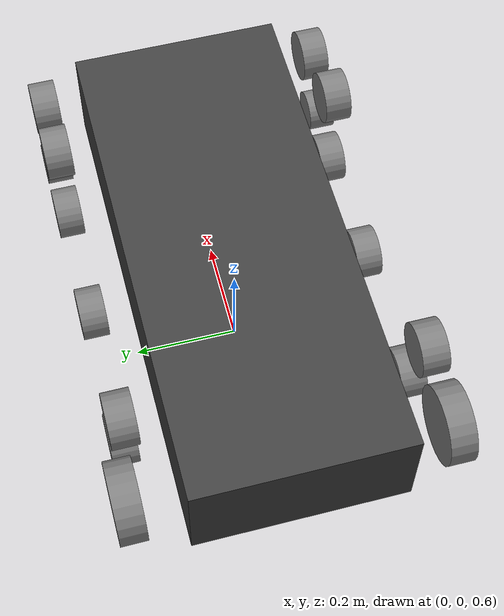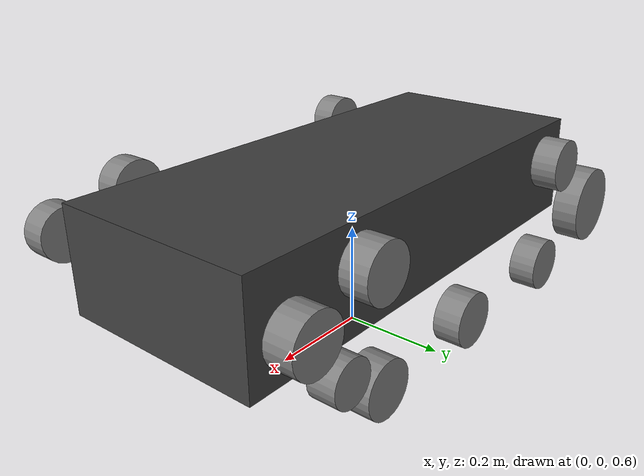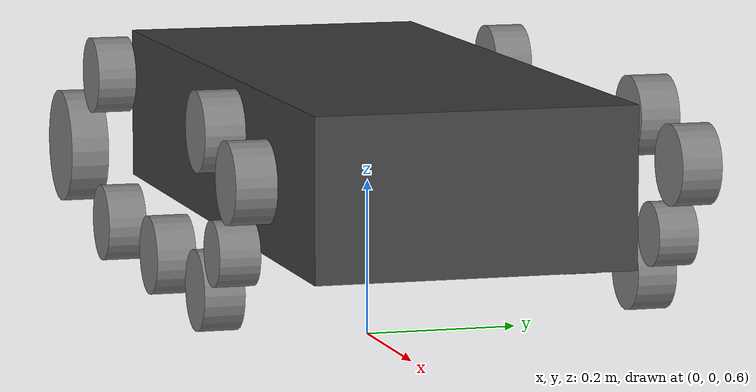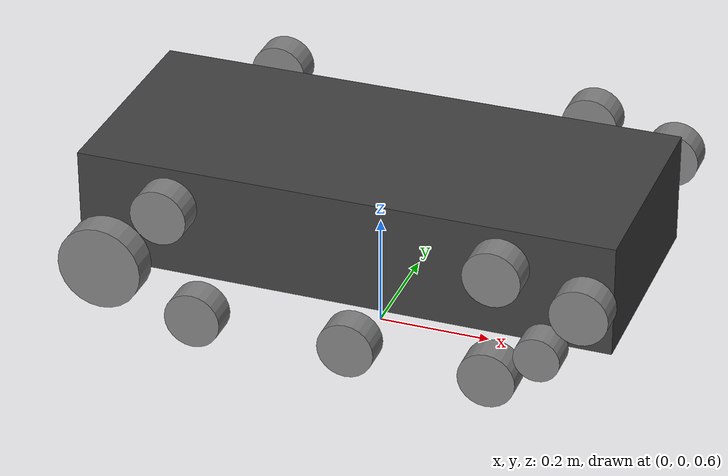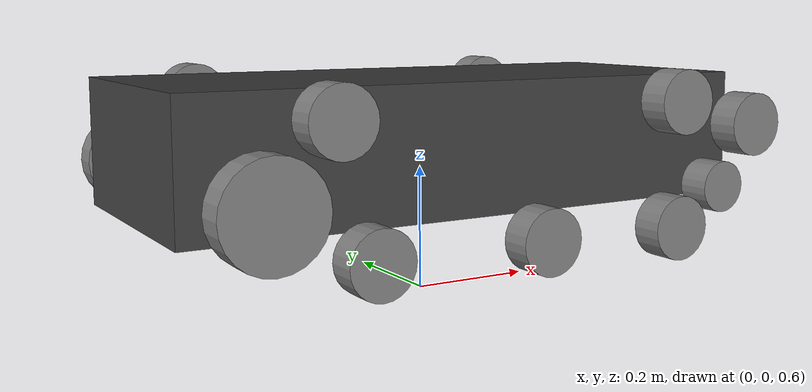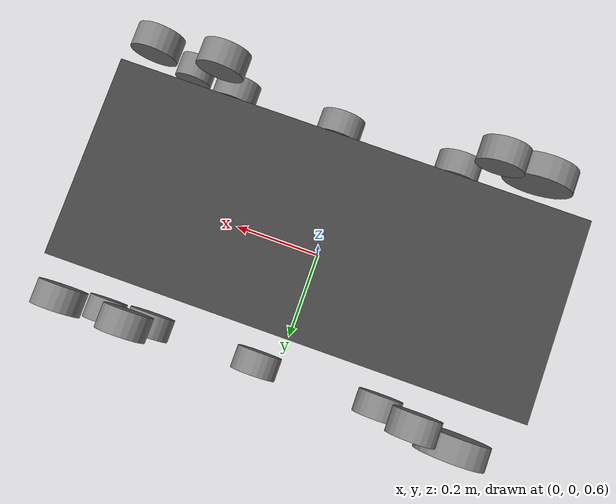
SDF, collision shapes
<?xml version="1.0" ?>
<!-- |    This document was autogenerated by xacro from model.xacro                    | -->
<!-- |    EDITING THIS FILE BY HAND IS NOT RECOMMENDED                                 | -->
<sdf version="1.10">
  <model canonical_link="base_link" name="bunker">
    <!-- base_link -->
    <link name="base_link">
      <pose relative_to="__model__">0 0 1 0 0 0</pose>
      <inertial auto="true">
        <mass>130</mass>
      </inertial>
      <visual name="visual">
        <geometry>
          <mesh>
            <uri>meshes/base_link.STL</uri>
          </mesh>
        </geometry>
        <material>
          <ambient>0.25 0.25 0.25 1.0</ambient>
          <diffuse>0.25 0.25 0.25 1.0</diffuse>
          <specular>0.25 0.25 0.25 1.0</specular>
        </material>
      </visual>
      <visual name="visual2">
        <geometry>
          <mesh>
            <uri>meshes/base2_Link.STL</uri>
          </mesh>
        </geometry>
        <material>
          <ambient>0.75 0.75 0.75 1.0</ambient>
          <diffuse>0.75 0.75 0.75 1.0</diffuse>
          <specular>0.75 0.75 0.75 1.0</specular>
        </material>
      </visual>
      <collision name="collision">
        <pose>0 0 -0.15 0 0 0</pose>
        <geometry>
          <box>
            <size>0.95 0.4 0.2</size>
          </box>
        </geometry>
      </collision>
      <sensor name="imu_sensor" type="imu">
        <always_on>true</always_on>
        <update_rate>1</update_rate>
        <visualize>true</visualize>
        <topic>bunker/imu</topic>
      </sensor>
    </link>
    <!-- wheels -->
    <link name="wheel1_Link">
      <pose relative_to="base_link">0.44403 0.3495 -0.12853 1.5708 0.0 -3.1416</pose>
      <inertial auto="true">
        <mass>2</mass>
      </inertial>
      <visual name="visual">
        <pose relative_to="base_link">0.44403 0.27449999999999997 -0.12853 1.5708 0.0 -3.1416</pose>
        <geometry>
          <mesh>
            <uri>meshes/wheel1_Link.STL</uri>
          </mesh>
        </geometry>
        <material>
          <ambient>0.5 0.5 0.5 1.0</ambient>
          <diffuse>0.5 0.5 0.5 1.0</diffuse>
          <specular>0.5 0.5 0.5 1.0</specular>
        </material>
      </visual>
      <collision name="collision">
        <pose relative_to="base_link">0.44403 0.27449999999999997 -0.12853 1.5708 0.0 -3.1416</pose>
        <geometry>
          <cylinder>
            <radius>0.05</radius>
            <length>0.05</length>
          </cylinder>
        </geometry>
      </collision>
    </link>
    <joint name="wheel1_joint" type="revolute">
      <pose relative_to="wheel1_Link"/>
      <parent>base_link</parent>
      <child>wheel1_Link</child>
      <axis>
        <xyz>0 0 1</xyz>
        <limit>
          <lower>-inf</lower>
          <upper>inf</upper>
        </limit>
      </axis>
    </joint>
    <link name="wheel1.1_Link">
      <pose relative_to="base_link">0.37551 0.3495 -0.22305 1.5708 0.0 -3.1416</pose>
      <inertial auto="true">
        <mass>1</mass>
      </inertial>
      <visual name="visual">
        <pose relative_to="base_link">0.37551 0.27449999999999997 -0.22305 1.5708 0.0 -3.1416</pose>
        <geometry>
          <mesh>
            <uri>meshes/wheel1.1_Link.STL</uri>
          </mesh>
        </geometry>
        <material>
          <ambient>0.5 0.5 0.5 1.0</ambient>
          <diffuse>0.5 0.5 0.5 1.0</diffuse>
          <specular>0.5 0.5 0.5 1.0</specular>
        </material>
      </visual>
      <collision name="collision">
        <pose relative_to="base_link">0.37551 0.27449999999999997 -0.22305 1.5708 0.0 -3.1416</pose>
        <geometry>
          <cylinder>
            <radius>0.04</radius>
            <length>0.05</length>
          </cylinder>
        </geometry>
      </collision>
    </link>
    <joint name="wheel1.1_joint" type="revolute">
      <pose relative_to="wheel1.1_Link"/>
      <parent>base_link</parent>
      <child>wheel1.1_Link</child>
      <axis>
        <xyz>0 0 1</xyz>
        <limit>
          <lower>-inf</lower>
          <upper>inf</upper>
        </limit>
      </axis>
    </joint>
    <link name="wheel1.2_Link">
      <pose relative_to="base_link">0.29039 0.3495 -0.28104 1.5708 0.0 -3.1416</pose>
      <inertial auto="true">
        <mass>1</mass>
      </inertial>
      <visual name="visual">
        <pose relative_to="base_link">0.29039 0.27449999999999997 -0.28104 1.5708 0.0 -3.1416</pose>
        <geometry>
          <mesh>
            <uri>meshes/wheel1.2_Link.STL</uri>
          </mesh>
        </geometry>
        <material>
          <ambient>0.5 0.5 0.5 1.0</ambient>
          <diffuse>0.5 0.5 0.5 1.0</diffuse>
          <specular>0.5 0.5 0.5 1.0</specular>
        </material>
      </visual>
      <collision name="collision">
        <pose relative_to="base_link">0.29039 0.27449999999999997 -0.28104 1.5708 0.0 -3.1416</pose>
        <geometry>
          <cylinder>
            <radius>0.05</radius>
            <length>0.05</length>
          </cylinder>
        </geometry>
      </collision>
    </link>
    <joint name="wheel1.2_joint" type="revolute">
      <pose relative_to="wheel1.2_Link"/>
      <parent>base_link</parent>
      <child>wheel1.2_Link</child>
      <axis>
        <xyz>0 0 1</xyz>
        <limit>
          <lower>-inf</lower>
          <upper>inf</upper>
        </limit>
      </axis>
    </joint>
    <link name="wheel1.3_Link">
      <pose relative_to="base_link">0.29603 0.3495 -0.087 1.5708 0.0 -3.1416</pose>
      <inertial auto="true">
        <mass>1</mass>
      </inertial>
      <visual name="visual">
        <pose relative_to="base_link">0.29603 0.27449999999999997 -0.087 1.5708 0.0 -3.1416</pose>
        <geometry>
          <mesh>
            <uri>meshes/wheel1.3_Link.STL</uri>
          </mesh>
        </geometry>
        <material>
          <ambient>0.5 0.5 0.5 1.0</ambient>
          <diffuse>0.5 0.5 0.5 1.0</diffuse>
          <specular>0.5 0.5 0.5 1.0</specular>
        </material>
      </visual>
      <collision name="collision">
        <pose relative_to="base_link">0.29603 0.27449999999999997 -0.087 1.5708 0.0 -3.1416</pose>
        <geometry>
          <cylinder>
            <radius>0.05</radius>
            <length>0.05</length>
          </cylinder>
        </geometry>
      </collision>
    </link>
    <joint name="wheel1.3_joint" type="revolute">
      <pose relative_to="wheel1.3_Link"/>
      <parent>base_link</parent>
      <child>wheel1.3_Link</child>
      <axis>
        <xyz>0 0 1</xyz>
        <limit>
          <lower>-inf</lower>
          <upper>inf</upper>
        </limit>
      </axis>
    </joint>
    <link name="wheel2_Link">
      <pose relative_to="base_link">0.44403 -0.3495 -0.12853 1.5708 0.0 -3.1416</pose>
      <inertial auto="true">
        <mass>2</mass>
      </inertial>
      <visual name="visual">
        <pose relative_to="base_link">0.44403 -0.27449999999999997 -0.12853 1.5708 0.0 -3.1416</pose>
        <geometry>
          <mesh>
            <uri>meshes/wheel2_Link.STL</uri>
          </mesh>
        </geometry>
        <material>
          <ambient>0.5 0.5 0.5 1.0</ambient>
          <diffuse>0.5 0.5 0.5 1.0</diffuse>
          <specular>0.5 0.5 0.5 1.0</specular>
        </material>
      </visual>
      <collision name="collision">
        <pose relative_to="base_link">0.44403 -0.27449999999999997 -0.12853 1.5708 0.0 -3.1416</pose>
        <geometry>
          <cylinder>
            <radius>0.05</radius>
            <length>0.05</length>
          </cylinder>
        </geometry>
      </collision>
    </link>
    <joint name="wheel2_joint" type="revolute">
      <pose relative_to="wheel2_Link"/>
      <parent>base_link</parent>
      <child>wheel2_Link</child>
      <axis>
        <xyz>0 0 1</xyz>
        <limit>
          <lower>-inf</lower>
          <upper>inf</upper>
        </limit>
      </axis>
    </joint>
    <link name="wheel2.1_Link">
      <pose relative_to="base_link">0.37551 -0.3495 -0.22305 1.5708 0.0 -3.1416</pose>
      <inertial auto="true">
        <mass>1</mass>
      </inertial>
      <visual name="visual">
        <pose relative_to="base_link">0.37551 -0.27449999999999997 -0.22305 1.5708 0.0 -3.1416</pose>
        <geometry>
          <mesh>
            <uri>meshes/wheel2.1_Link.STL</uri>
          </mesh>
        </geometry>
        <material>
          <ambient>0.5 0.5 0.5 1.0</ambient>
          <diffuse>0.5 0.5 0.5 1.0</diffuse>
          <specular>0.5 0.5 0.5 1.0</specular>
        </material>
      </visual>
      <collision name="collision">
        <pose relative_to="base_link">0.37551 -0.27449999999999997 -0.22305 1.5708 0.0 -3.1416</pose>
        <geometry>
          <cylinder>
            <radius>0.04</radius>
            <length>0.05</length>
          </cylinder>
        </geometry>
      </collision>
    </link>
    <joint name="wheel2.1_joint" type="revolute">
      <pose relative_to="wheel2.1_Link"/>
      <parent>base_link</parent>
      <child>wheel2.1_Link</child>
      <axis>
        <xyz>0 0 1</xyz>
        <limit>
          <lower>-inf</lower>
          <upper>inf</upper>
        </limit>
      </axis>
    </joint>
    <link name="wheel2.2_Link">
      <pose relative_to="base_link">0.29039 -0.3495 -0.28104 1.5708 0.0 -3.1416</pose>
      <inertial auto="true">
        <mass>1</mass>
      </inertial>
      <visual name="visual">
        <pose relative_to="base_link">0.29039 -0.27449999999999997 -0.28104 1.5708 0.0 -3.1416</pose>
        <geometry>
          <mesh>
            <uri>meshes/wheel2.2_Link.STL</uri>
          </mesh>
        </geometry>
        <material>
          <ambient>0.5 0.5 0.5 1.0</ambient>
          <diffuse>0.5 0.5 0.5 1.0</diffuse>
          <specular>0.5 0.5 0.5 1.0</specular>
        </material>
      </visual>
      <collision name="collision">
        <pose relative_to="base_link">0.29039 -0.27449999999999997 -0.28104 1.5708 0.0 -3.1416</pose>
        <geometry>
          <cylinder>
            <radius>0.05</radius>
            <length>0.05</length>
          </cylinder>
        </geometry>
      </collision>
    </link>
    <joint name="wheel2.2_joint" type="revolute">
      <pose relative_to="wheel2.2_Link"/>
      <parent>base_link</parent>
      <child>wheel2.2_Link</child>
      <axis>
        <xyz>0 0 1</xyz>
        <limit>
          <lower>-inf</lower>
          <upper>inf</upper>
        </limit>
      </axis>
    </joint>
    <link name="wheel2.3_Link">
      <pose relative_to="base_link">0.29603 -0.3495 -0.087 1.5708 0.0 -3.1416</pose>
      <inertial auto="true">
        <mass>1</mass>
      </inertial>
      <visual name="visual">
        <pose relative_to="base_link">0.29603 -0.27449999999999997 -0.087 1.5708 0.0 -3.1416</pose>
        <geometry>
          <mesh>
            <uri>meshes/wheel2.3_Link.STL</uri>
          </mesh>
        </geometry>
        <material>
          <ambient>0.5 0.5 0.5 1.0</ambient>
          <diffuse>0.5 0.5 0.5 1.0</diffuse>
          <specular>0.5 0.5 0.5 1.0</specular>
        </material>
      </visual>
      <collision name="collision">
        <pose relative_to="base_link">0.29603 -0.27449999999999997 -0.087 1.5708 0.0 -3.1416</pose>
        <geometry>
          <cylinder>
            <radius>0.05</radius>
            <length>0.05</length>
          </cylinder>
        </geometry>
      </collision>
    </link>
    <joint name="wheel2.3_joint" type="revolute">
      <pose relative_to="wheel2.3_Link"/>
      <parent>base_link</parent>
      <child>wheel2.3_Link</child>
      <axis>
        <xyz>0 0 1</xyz>
        <limit>
          <lower>-inf</lower>
          <upper>inf</upper>
        </limit>
      </axis>
    </joint>
    <link name="wheel3_Link">
      <pose relative_to="base_link">-0.38871 0.295 -0.19381 1.5708 0.0 -3.1416</pose>
      <inertial auto="true">
        <mass>8</mass>
      </inertial>
      <visual name="visual">
        <pose relative_to="base_link">-0.38871 0.295 -0.19381 1.5708 0.0 -3.1416</pose>
        <geometry>
          <mesh>
            <uri>meshes/wheel3_Link.STL</uri>
          </mesh>
        </geometry>
        <material>
          <ambient>0.5 0.5 0.5 1.0</ambient>
          <diffuse>0.5 0.5 0.5 1.0</diffuse>
          <specular>0.5 0.5 0.5 1.0</specular>
        </material>
      </visual>
      <collision name="collision">
        <pose relative_to="base_link">-0.38871 0.295 -0.19381 1.5708 0.0 -3.1416</pose>
        <geometry>
          <cylinder>
            <radius>0.075</radius>
            <length>0.05</length>
          </cylinder>
        </geometry>
      </collision>
    </link>
    <joint name="wheel3_joint" type="revolute">
      <pose relative_to="wheel3_Link"/>
      <parent>base_link</parent>
      <child>wheel3_Link</child>
      <axis>
        <xyz>0 0 1</xyz>
        <limit>
          <lower>-inf</lower>
          <upper>inf</upper>
        </limit>
      </axis>
    </joint>
    <link name="wheel3.1_Link">
      <pose relative_to="base_link">-0.23111 0.3495 -0.27671 1.5708 0.0 -3.1416</pose>
      <inertial auto="true">
        <mass>1</mass>
      </inertial>
      <visual name="visual">
        <pose relative_to="base_link">-0.23111 0.27449999999999997 -0.27671 1.5708 0.0 -3.1416</pose>
        <geometry>
          <mesh>
            <uri>meshes/wheel3.1_Link.STL</uri>
          </mesh>
        </geometry>
        <material>
          <ambient>0.5 0.5 0.5 1.0</ambient>
          <diffuse>0.5 0.5 0.5 1.0</diffuse>
          <specular>0.5 0.5 0.5 1.0</specular>
        </material>
      </visual>
      <collision name="collision">
        <pose relative_to="base_link">-0.23111 0.27449999999999997 -0.27671 1.5708 0.0 -3.1416</pose>
        <geometry>
          <cylinder>
            <radius>0.05</radius>
            <length>0.05</length>
          </cylinder>
        </geometry>
      </collision>
    </link>
    <joint name="wheel3.1_joint" type="revolute">
      <pose relative_to="wheel3.1_Link"/>
      <parent>base_link</parent>
      <child>wheel3.1_Link</child>
      <axis>
        <xyz>0 0 1</xyz>
        <limit>
          <lower>-inf</lower>
          <upper>inf</upper>
        </limit>
      </axis>
    </joint>
    <link name="wheel3.2_Link">
      <pose relative_to="base_link">0.043885 0.3495 -0.27671 1.5708 0.0 -3.1416</pose>
      <inertial auto="true">
        <mass>1</mass>
      </inertial>
      <visual name="visual">
        <pose relative_to="base_link">0.043885 0.27449999999999997 -0.27671 1.5708 0.0 -3.1416</pose>
        <geometry>
          <mesh>
            <uri>meshes/wheel3.2_Link.STL</uri>
          </mesh>
        </geometry>
        <material>
          <ambient>0.5 0.5 0.5 1.0</ambient>
          <diffuse>0.5 0.5 0.5 1.0</diffuse>
          <specular>0.5 0.5 0.5 1.0</specular>
        </material>
      </visual>
      <collision name="collision">
        <pose relative_to="base_link">0.043885 0.27449999999999997 -0.27671 1.5708 0.0 -3.1416</pose>
        <geometry>
          <cylinder>
            <radius>0.05</radius>
            <length>0.05</length>
          </cylinder>
        </geometry>
      </collision>
    </link>
    <joint name="wheel3.2_joint" type="revolute">
      <pose relative_to="wheel3.2_Link"/>
      <parent>base_link</parent>
      <child>wheel3.2_Link</child>
      <axis>
        <xyz>0 0 1</xyz>
        <limit>
          <lower>-inf</lower>
          <upper>inf</upper>
        </limit>
      </axis>
    </joint>
    <link name="wheel3.3_Link">
      <pose relative_to="base_link">-0.28597 0.3495 -0.087 1.5708 0.0 -3.1416</pose>
      <inertial auto="true">
        <mass>1</mass>
      </inertial>
      <visual name="visual">
        <pose relative_to="base_link">-0.28597 0.27449999999999997 -0.087 1.5708 0.0 -3.1416</pose>
        <geometry>
          <mesh>
            <uri>meshes/wheel3.3_Link.STL</uri>
          </mesh>
        </geometry>
        <material>
          <ambient>0.5 0.5 0.5 1.0</ambient>
          <diffuse>0.5 0.5 0.5 1.0</diffuse>
          <specular>0.5 0.5 0.5 1.0</specular>
        </material>
      </visual>
      <collision name="collision">
        <pose relative_to="base_link">-0.28597 0.27449999999999997 -0.087 1.5708 0.0 -3.1416</pose>
        <geometry>
          <cylinder>
            <radius>0.05</radius>
            <length>0.05</length>
          </cylinder>
        </geometry>
      </collision>
    </link>
    <joint name="wheel3.3_joint" type="revolute">
      <pose relative_to="wheel3.3_Link"/>
      <parent>base_link</parent>
      <child>wheel3.3_Link</child>
      <axis>
        <xyz>0 0 1</xyz>
        <limit>
          <lower>-inf</lower>
          <upper>inf</upper>
        </limit>
      </axis>
    </joint>
    <link name="wheel4_Link">
      <pose relative_to="base_link">-0.38871 -0.295 -0.19381 1.5708 0.0 -3.1416</pose>
      <inertial auto="true">
        <mass>8</mass>
      </inertial>
      <visual name="visual">
        <pose relative_to="base_link">-0.38871 -0.295 -0.19381 1.5708 0.0 -3.1416</pose>
        <geometry>
          <mesh>
            <uri>meshes/wheel4_Link.STL</uri>
          </mesh>
        </geometry>
        <material>
          <ambient>0.5 0.5 0.5 1.0</ambient>
          <diffuse>0.5 0.5 0.5 1.0</diffuse>
          <specular>0.5 0.5 0.5 1.0</specular>
        </material>
      </visual>
      <collision name="collision">
        <pose relative_to="base_link">-0.38871 -0.295 -0.19381 1.5708 0.0 -3.1416</pose>
        <geometry>
          <cylinder>
            <radius>0.075</radius>
            <length>0.05</length>
          </cylinder>
        </geometry>
      </collision>
    </link>
    <joint name="wheel4_joint" type="revolute">
      <pose relative_to="wheel4_Link"/>
      <parent>base_link</parent>
      <child>wheel4_Link</child>
      <axis>
        <xyz>0 0 1</xyz>
        <limit>
          <lower>-inf</lower>
          <upper>inf</upper>
        </limit>
      </axis>
    </joint>
    <link name="wheel4.1_Link">
      <pose relative_to="base_link">-0.23111 -0.3495 -0.27671 1.5708 0.0 -3.1416</pose>
      <inertial auto="true">
        <mass>1</mass>
      </inertial>
      <visual name="visual">
        <pose relative_to="base_link">-0.23111 -0.27449999999999997 -0.27671 1.5708 0.0 -3.1416</pose>
        <geometry>
          <mesh>
            <uri>meshes/wheel4.1_Link.STL</uri>
          </mesh>
        </geometry>
        <material>
          <ambient>0.5 0.5 0.5 1.0</ambient>
          <diffuse>0.5 0.5 0.5 1.0</diffuse>
          <specular>0.5 0.5 0.5 1.0</specular>
        </material>
      </visual>
      <collision name="collision">
        <pose relative_to="base_link">-0.23111 -0.27449999999999997 -0.27671 1.5708 0.0 -3.1416</pose>
        <geometry>
          <cylinder>
            <radius>0.05</radius>
            <length>0.05</length>
          </cylinder>
        </geometry>
      </collision>
    </link>
    <joint name="wheel4.1_joint" type="revolute">
      <pose relative_to="wheel4.1_Link"/>
      <parent>base_link</parent>
      <child>wheel4.1_Link</child>
      <axis>
        <xyz>0 0 1</xyz>
        <limit>
          <lower>-inf</lower>
          <upper>inf</upper>
        </limit>
      </axis>
    </joint>
    <link name="wheel4.2_Link">
      <pose relative_to="base_link">0.043885 -0.3495 -0.27671 1.5708 0.0 -3.1416</pose>
      <inertial auto="true">
        <mass>1</mass>
      </inertial>
      <visual name="visual">
        <pose relative_to="base_link">0.043885 -0.27449999999999997 -0.27671 1.5708 0.0 -3.1416</pose>
        <geometry>
          <mesh>
            <uri>meshes/wheel4.2_Link.STL</uri>
          </mesh>
        </geometry>
        <material>
          <ambient>0.5 0.5 0.5 1.0</ambient>
          <diffuse>0.5 0.5 0.5 1.0</diffuse>
          <specular>0.5 0.5 0.5 1.0</specular>
        </material>
      </visual>
      <collision name="collision">
        <pose relative_to="base_link">0.043885 -0.27449999999999997 -0.27671 1.5708 0.0 -3.1416</pose>
        <geometry>
          <cylinder>
            <radius>0.05</radius>
            <length>0.05</length>
          </cylinder>
        </geometry>
      </collision>
    </link>
    <joint name="wheel4.2_joint" type="revolute">
      <pose relative_to="wheel4.2_Link"/>
      <parent>base_link</parent>
      <child>wheel4.2_Link</child>
      <axis>
        <xyz>0 0 1</xyz>
        <limit>
          <lower>-inf</lower>
          <upper>inf</upper>
        </limit>
      </axis>
    </joint>
    <link name="wheel4.3_Link">
      <pose relative_to="base_link">-0.28597 -0.3495 -0.087 1.5708 0.0 -3.1416</pose>
      <inertial auto="true">
        <mass>1</mass>
      </inertial>
      <visual name="visual">
        <pose relative_to="base_link">-0.28597 -0.27449999999999997 -0.087 1.5708 0.0 -3.1416</pose>
        <geometry>
          <mesh>
            <uri>meshes/wheel4.3_Link.STL</uri>
          </mesh>
        </geometry>
        <material>
          <ambient>0.5 0.5 0.5 1.0</ambient>
          <diffuse>0.5 0.5 0.5 1.0</diffuse>
          <specular>0.5 0.5 0.5 1.0</specular>
        </material>
      </visual>
      <collision name="collision">
        <pose relative_to="base_link">-0.28597 -0.27449999999999997 -0.087 1.5708 0.0 -3.1416</pose>
        <geometry>
          <cylinder>
            <radius>0.05</radius>
            <length>0.05</length>
          </cylinder>
        </geometry>
      </collision>
    </link>
    <joint name="wheel4.3_joint" type="revolute">
      <pose relative_to="wheel4.3_Link"/>
      <parent>base_link</parent>
      <child>wheel4.3_Link</child>
      <axis>
        <xyz>0 0 1</xyz>
        <limit>
          <lower>-inf</lower>
          <upper>inf</upper>
        </limit>
      </axis>
    </joint>
    <!-- plugins -->
    <plugin filename="gz-sim-diff-drive-system" name="gz::sim::systems::DiffDrive">
      <left_joint>wheel1_joint</left_joint>
      <left_joint>wheel1.1_joint</left_joint>
      <left_joint>wheel1.2_joint</left_joint>
      <left_joint>wheel1.3_joint</left_joint>
      <left_joint>wheel3_joint</left_joint>
      <left_joint>wheel3.1_joint</left_joint>
      <left_joint>wheel3.2_joint</left_joint>
      <left_joint>wheel3.3_joint</left_joint>
      <right_joint>wheel2_joint</right_joint>
      <right_joint>wheel2.1_joint</right_joint>
      <right_joint>wheel2.2_joint</right_joint>
      <right_joint>wheel2.3_joint</right_joint>
      <right_joint>wheel4_joint</right_joint>
      <right_joint>wheel4.1_joint</right_joint>
      <right_joint>wheel4.2_joint</right_joint>
      <right_joint>wheel4.3_joint</right_joint>
      <odom_publish_frequency>1</odom_publish_frequency>
      <topic>cmd_vel</topic>
    </plugin>
    <plugin filename="gz-sim-triggered-publisher-system" name="gz::sim::systems::TriggeredPublisher">
      <input topic="/keyboard/keypress" type="gz.msgs.Int32">
        <match field="data">16777235</match>
      </input>
      <output topic="/cmd_vel" type="gz.msgs.Twist">
        linear: {x: 1}, angular: {z: 0.0}
      </output>
    </plugin>
    <plugin filename="gz-sim-triggered-publisher-system" name="gz::sim::systems::TriggeredPublisher">
      <input topic="/keyboard/keypress" type="gz.msgs.Int32">
        <match field="data">16777237</match>
      </input>
      <output topic="/cmd_vel" type="gz.msgs.Twist">
        linear: {x: -1}, angular: {z: 0.0}
      </output>
    </plugin>
    <plugin filename="gz-sim-triggered-publisher-system" name="gz::sim::systems::TriggeredPublisher">
      <input topic="/keyboard/keypress" type="gz.msgs.Int32">
        <match field="data">16777234</match>
      </input>
      <output topic="/cmd_vel" type="gz.msgs.Twist">
        linear: {x: 0.0}, angular: {z: 1}
      </output>
    </plugin>
    <plugin filename="gz-sim-triggered-publisher-system" name="gz::sim::systems::TriggeredPublisher">
      <input topic="/keyboard/keypress" type="gz.msgs.Int32">
        <match field="data">16777236</match>
      </input>
      <output topic="/cmd_vel" type="gz.msgs.Twist">
        linear: {x: 0.0}, angular: {z: -1}
      </output>
    </plugin>
    <plugin filename="gz-sim-triggered-publisher-system" name="gz::sim::systems::TriggeredPublisher">
      <input topic="/keyboard/keypress" type="gz.msgs.Int32">
        <match field="data">83</match>
      </input>
      <output topic="/cmd_vel" type="gz.msgs.Twist">
        linear: {x: 0.0}, angular: {z: 0.0}
      </output>
    </plugin>
    <plugin filename="gz-sim-pose-publisher-system" name="gz::sim::systems::PosePublisher">
      <publish_link_pose>False</publish_link_pose>
      <publish_visual_pose>False</publish_visual_pose>
      <publish_collision_pose>False</publish_collision_pose>
      <publish_sensor_pose>False</publish_sensor_pose>
      <publish_model_pose>True</publish_model_pose>
      <publish_nested_model_pose>True</publish_nested_model_pose>
      <use_pose_vector_msg>False</use_pose_vector_msg>
      <update_frequency>1</update_frequency>
      <static_publisher>False</static_publisher>
      <static_update_frequency>1</static_update_frequency>
    </plugin>
    <plugin filename="gz-sim-imu-system" name="gz::sim::systems::Imu">
  </plugin>
  </model>
</sdf>
